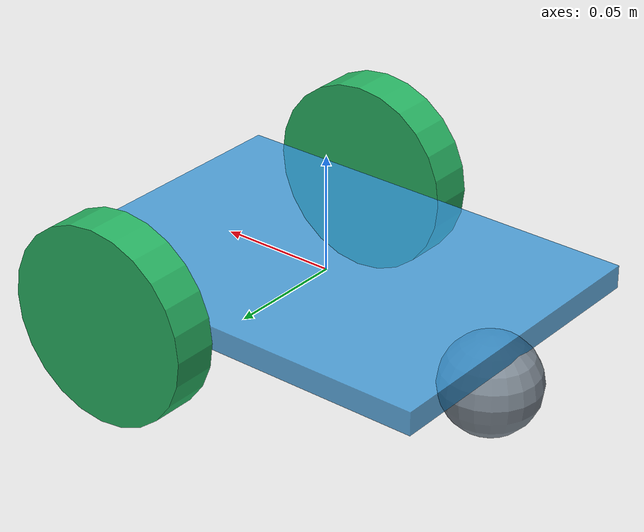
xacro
<?xml version='1.0'?>
<robot xmlns:xacro="http://www.ros.org/wiki/xacro" name="robot_3r">

    <xacro:property name="blx" value="${0.186}" />
    <xacro:property name="bly" value="${0.136}" />
    <xacro:property name="blz" value="${0.01}" />

    <xacro:property name="oly" value="${0.09-(0.019/2)}" />
    <xacro:property name="olx" value="${0.03942}" />
    <xacro:property name="olz" value="${0}" />

    <xacro:property name="crad" value="${0.042}" />
    <xacro:property name="clen" value="${0.019}" />

    <xacro:property name="srad" value="${0.042/2}" />

    <xacro:macro name="wheel_macro" params="p_name p_radius p_length">
        <link name="${p_name}">
            <visual>
                <!-- box geometry -->
                <geometry>
                    <cylinder radius="${p_radius}" length="${p_length}"/>
                </geometry>
                <material name="verde_obs">
                    <color rgba="0.156 0.705 0.388 1.0"/>
                </material>
                <origin xyz="0 0 0" rpy="${pi/2} 0 0 "/>
            </visual>

            <inertial>
                <mass value="1"/>
                <origin xyz="0 0 0" rpy="0 0 0 "/>
                <inertia ixx="0" ixy="0" ixz="0" iyy="0" iyz="0" izz="0"/>
            </inertial>

            <collision>
                <geometry>
                    <cylinder radius="${p_radius}" length="${p_length}"/>
                </geometry>
                <origin xyz="0 0 0" rpy="${pi/2} 0 0 "/>
            </collision>
        </link>
    </xacro:macro>

    <link name="base_link">
    </link>

    <!-- Joint prismatica para movimiento en el eje X -->
    <joint name="base_chasis_joint_x" type="prismatic">
        <parent link="base_link"/>
        <child link="chasis_link_x"/>
        <origin xyz="0 0 0" rpy="0 0 0"/>
        <axis xyz="1 0 0"/>
        <limit lower="-1.0" upper="1.0" effort="10" velocity="1.0"/> <!-- Ajusta los límites -->
    </joint>

    <link name="chasis_link_x">
    </link>

    <!-- Joint prismatica para movimiento en el eje Y -->
    <joint name="base_chasis_joint_y" type="prismatic">
        <parent link="chasis_link_x"/>
        <child link="chasis_link_y"/>
        <origin xyz="0 0 0" rpy="0 0 0"/>
        <axis xyz="0 1 0"/>
        <limit lower="-1.0" upper="1.0" effort="10" velocity="1.0"/>
    </joint>

    <link name="chasis_link_y">
    </link>

    <!-- Joint rotacional para giro en Z -->
    <joint name="base_chasis_joint_yaw" type="revolute">
        <parent link="chasis_link_y"/>
        <child link="chasis_link"/>
        <origin xyz="0 0 0" rpy="0 0 0"/>
        <axis xyz="0 0 1"/>
        <limit lower="-3.14159" upper="3.14159" effort="5" velocity="1.0"/>
    </joint>

    <link name="chasis_link">
        <visual>
            <!-- box geometry -->
            <geometry>
                <box size="${blx} ${bly} ${blz}"/>
            </geometry>
            <material name="cian">
                <color rgba="0.203 0.596 0.858 0.8"/>
            </material>
            <origin xyz="0 0 0" rpy="0 0 0 "/>
        </visual>

        <inertial>
            <mass value="1"/>
            <origin xyz="0 0 0" rpy="0 0 0 "/>
            <inertia ixx="0" ixy="0" ixz="0" iyy="0" iyz="0" izz="0"/>
        </inertial>

        <collision>
            <!-- box geometry -->
            <geometry>
                <box size="${blx} ${bly} ${blz}"/>
            </geometry>
            <origin xyz="0 0 0" rpy="0 0 0 "/>
        </collision>
    </link>

    <joint name="chasis_rwheel_joint" type="continuous">
        <parent link="chasis_link"/>
        <child link="rwheel_link"/>
        <origin xyz="${olx} ${oly} ${olz}" rpy="0 0 0"/>
        <axis xyz="0 1 0"/>
        <!-- Limit the maximum velocity; here, it's set to 10 rad/s, adjust as needed -->
        <limit effort="1" velocity="125.66"/>
        <dynamics damping="0" friction="0"/>
    </joint>

    <xacro:wheel_macro p_name="rwheel_link"
                       p_radius="${crad}"
                       p_length="${clen}"/>

    <joint name="chasis_lwheel_joint" type="continuous">
        <parent link="chasis_link"/>
        <child link="lwheel_link"/>
        <origin xyz="${olx} ${-oly} ${olz}" rpy="0 0 0"/>
        <axis xyz="0 1 0"/>
        <!-- Limit the maximum velocity; here, it's set to 10 rad/s, adjust as needed -->
        <limit effort="1" velocity="125.66"/>
        <dynamics damping="0" friction="0.0"/>
    </joint>

    <xacro:wheel_macro p_name="lwheel_link"
                       p_radius="${crad}"
                       p_length="${clen}"/>

    <joint name="chasis_caster_joint" type="fixed">
        <parent link="chasis_link"/>
        <child link="caster_link"/>
        <origin xyz="-0.08058 0 ${-srad}" rpy="0 0 0"/>
    </joint>

    <link name="caster_link">
        <visual>
            <geometry>
                <sphere radius="${srad}"/>
            </geometry>
            <material name="gris">
                <color rgba="0.501 0.545 0.588 1.0"/>
            </material>
            <origin xyz="0 0 0" rpy="0 0 0 "/>
        </visual>

        <inertial>
            <mass value="1"/>
            <origin xyz="0 0 0" rpy="0 0 0 "/>
            <inertia ixx="0" ixy="0" ixz="0" iyy="0" iyz="0" izz="0"/>
        </inertial>

        <collision>
            <geometry>
                <sphere radius="${srad}"/>
            </geometry>
            <origin xyz="0 0 0" rpy="0 0 0 "/>
        </collision>
    </link>

</robot>
